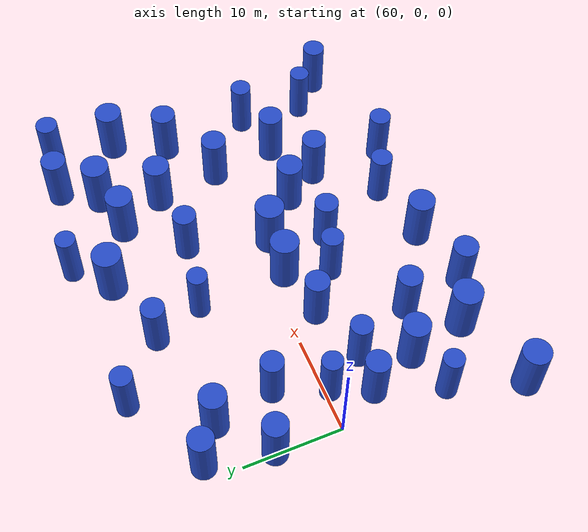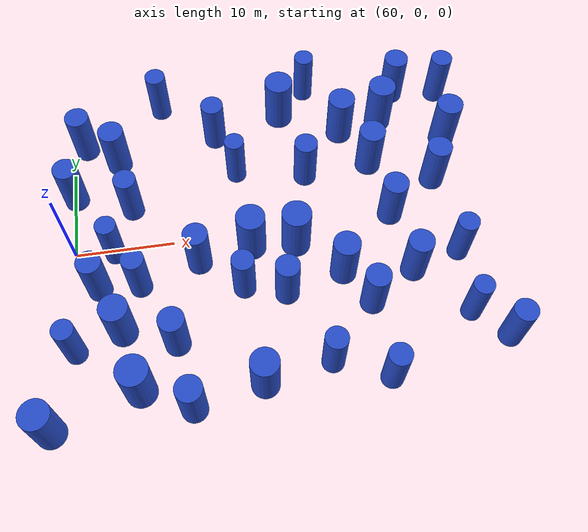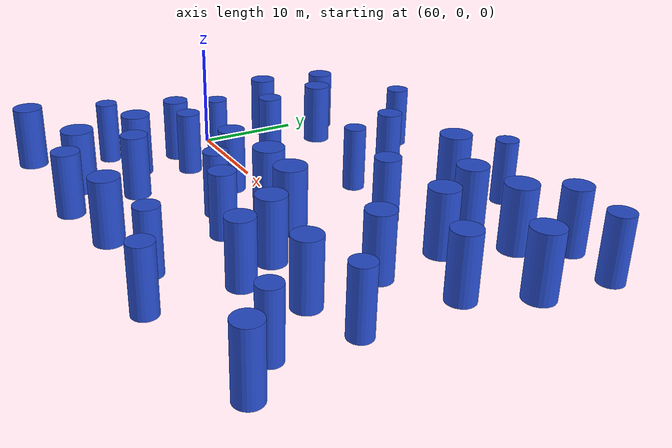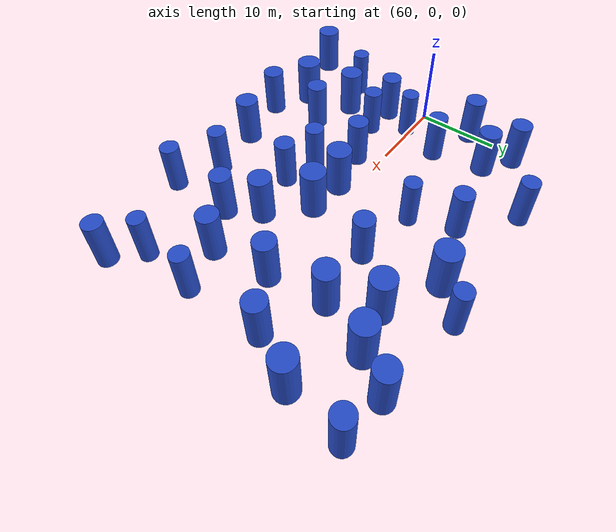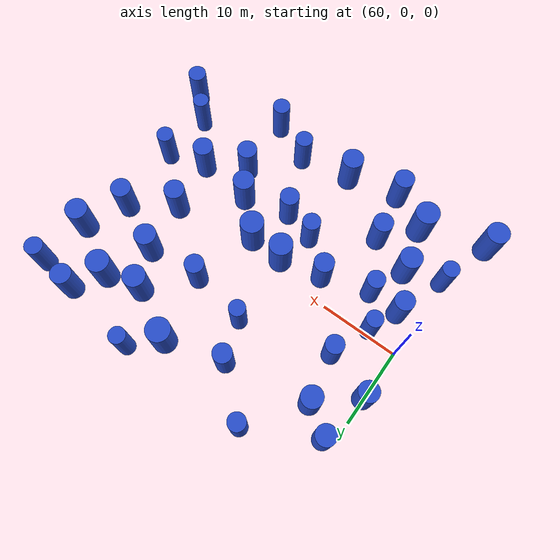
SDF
<sdf version="1.7">
 <world name="default">
  <model name="1">
   <static>1</static>
   <link name="link">
    <inertial>
     <mass>2</mass>
     <inertia><ixx>6.72296</ixx><ixy>0</ixy><ixz>0</ixz><iyy>6.72296</iyy><iyz>0</iyz><izz>1.44593</izz></inertia>
    </inertial>
    <collision name="collision">
     <geometry><cylinder><length>6</length><radius>1.20247</radius></cylinder></geometry>
     <surface><contact><collide_without_contact>1</collide_without_contact></contact></surface>
    </collision>
    <visual name="visual">
     <geometry><cylinder><length>6</length><radius>1.20247</radius></cylinder></geometry>
     <material>
      <script><uri>file://media/materials/scripts/gazebo.material</uri><name>Gazebo/Blue</name></script>
     </material>
    </visual>
    <gravity>0</gravity>
   </link>
   <pose>80.6973 -7.39447 3 0 -0 0</pose>
  </model>
  <model name="2">
   <static>1</static>
   <link name="link">
    <inertial>
     <mass>2</mass>
     <inertia><ixx>6.83423</ixx><ixy>0</ixy><ixz>0</ixz><iyy>6.83423</iyy><iyz>0</iyz><izz>1.66847</izz></inertia>
    </inertial>
    <collision name="collision">
     <geometry><cylinder><length>6</length><radius>1.29169</radius></cylinder></geometry>
     <surface><contact><collide_without_contact>1</collide_without_contact></contact></surface>
    </collision>
    <visual name="visual">
     <geometry><cylinder><length>6</length><radius>1.29169</radius></cylinder></geometry>
     <material>
      <script><uri>file://media/materials/scripts/gazebo.material</uri><name>Gazebo/Blue</name></script>
     </material>
    </visual>
    <gravity>0</gravity>
   </link>
   <pose>92.757 0.175366 3 0 -0 0</pose>
  </model>
  <model name="3">
   <static>1</static>
   <link name="link">
    <inertial>
     <mass>2</mass>
     <inertia><ixx>6.94931</ixx><ixy>0</ixy><ixz>0</ixz><iyy>6.94931</iyy><iyz>0</iyz><izz>1.89861</izz></inertia>
    </inertial>
    <collision name="collision">
     <geometry><cylinder><length>6</length><radius>1.3779</radius></cylinder></geometry>
     <surface><contact><collide_without_contact>1</collide_without_contact></contact></surface>
    </collision>
    <visual name="visual">
     <geometry><cylinder><length>6</length><radius>1.3779</radius></cylinder></geometry>
     <material>
      <script><uri>file://media/materials/scripts/gazebo.material</uri><name>Gazebo/Blue</name></script>
     </material>
    </visual>
    <gravity>0</gravity>
   </link>
   <pose>64.5107 -9.29219 3 0 -0 0</pose>
  </model>
  <model name="4">
   <static>1</static>
   <link name="link">
    <inertial>
     <mass>2</mass>
     <inertia><ixx>7.11213</ixx><ixy>0</ixy><ixz>0</ixz><iyy>7.11213</iyy><iyz>0</iyz><izz>2.22425</izz></inertia>
    </inertial>
    <collision name="collision">
     <geometry><cylinder><length>6</length><radius>1.49139</radius></cylinder></geometry>
     <surface><contact><collide_without_contact>1</collide_without_contact></contact></surface>
    </collision>
    <visual name="visual">
     <geometry><cylinder><length>6</length><radius>1.49139</radius></cylinder></geometry>
     <material>
      <script><uri>file://media/materials/scripts/gazebo.material</uri><name>Gazebo/Blue</name></script>
     </material>
    </visual>
    <gravity>0</gravity>
   </link>
   <pose>83.0964 14.8871 3 0 -0 0</pose>
  </model>
  <model name="5">
   <static>1</static>
   <link name="link">
    <inertial>
     <mass>2</mass>
     <inertia><ixx>6.9315</ixx><ixy>0</ixy><ixz>0</ixz><iyy>6.9315</iyy><iyz>0</iyz><izz>1.863</izz></inertia>
    </inertial>
    <collision name="collision">
     <geometry><cylinder><length>6</length><radius>1.36492</radius></cylinder></geometry>
     <surface><contact><collide_without_contact>1</collide_without_contact></contact></surface>
    </collision>
    <visual name="visual">
     <geometry><cylinder><length>6</length><radius>1.36492</radius></cylinder></geometry>
     <material>
      <script><uri>file://media/materials/scripts/gazebo.material</uri><name>Gazebo/Blue</name></script>
     </material>
    </visual>
    <gravity>0</gravity>
   </link>
   <pose>91.7951 6.85711 3 0 -0 0</pose>
  </model>
  <model name="8">
   <static>1</static>
   <link name="link">
    <inertial>
     <mass>2</mass>
     <inertia><ixx>6.98352</ixx><ixy>0</ixy><ixz>0</ixz><iyy>6.98352</iyy><iyz>0</iyz><izz>1.96705</izz></inertia>
    </inertial>
    <collision name="collision">
     <geometry><cylinder><length>6</length><radius>1.40251</radius></cylinder></geometry>
     <surface><contact><collide_without_contact>1</collide_without_contact></contact></surface>
    </collision>
    <visual name="visual">
     <geometry><cylinder><length>6</length><radius>1.40251</radius></cylinder></geometry>
     <material>
      <script><uri>file://media/materials/scripts/gazebo.material</uri><name>Gazebo/Blue</name></script>
     </material>
    </visual>
    <gravity>0</gravity>
   </link>
   <pose>57.7333 -18.0752 3 0 -0 0</pose>
  </model>
  <model name="9">
   <static>1</static>
   <link name="link">
    <inertial>
     <mass>2</mass>
     <inertia><ixx>6.71929</ixx><ixy>0</ixy><ixz>0</ixz><iyy>6.71929</iyy><iyz>0</iyz><izz>1.43859</izz></inertia>
    </inertial>
    <collision name="collision">
     <geometry><cylinder><length>6</length><radius>1.19941</radius></cylinder></geometry>
     <surface><contact><collide_without_contact>1</collide_without_contact></contact></surface>
    </collision>
    <visual name="visual">
     <geometry><cylinder><length>6</length><radius>1.19941</radius></cylinder></geometry>
     <material>
      <script><uri>file://media/materials/scripts/gazebo.material</uri><name>Gazebo/Blue</name></script>
     </material>
    </visual>
    <gravity>0</gravity>
   </link>
   <pose>84.7053 6.32276 3 0 -0 0</pose>
  </model>
  <model name="10">
   <static>1</static>
   <link name="link">
    <inertial>
     <mass>2</mass>
     <inertia><ixx>6.77724</ixx><ixy>0</ixy><ixz>0</ixz><iyy>6.77724</iyy><iyz>0</iyz><izz>1.55448</izz></inertia>
    </inertial>
    <collision name="collision">
     <geometry><cylinder><length>6</length><radius>1.24679</radius></cylinder></geometry>
     <surface><contact><collide_without_contact>1</collide_without_contact></contact></surface>
    </collision>
    <visual name="visual">
     <geometry><cylinder><length>6</length><radius>1.24679</radius></cylinder></geometry>
     <material>
      <script><uri>file://media/materials/scripts/gazebo.material</uri><name>Gazebo/Blue</name></script>
     </material>
    </visual>
    <gravity>0</gravity>
   </link>
   <pose>88.8436 -9.60499 3 0 -0 0</pose>
  </model>
  <model name="12">
   <static>1</static>
   <link name="link">
    <inertial>
     <mass>2</mass>
     <inertia><ixx>7.10079</ixx><ixy>0</ixy><ixz>0</ixz><iyy>7.10079</iyy><iyz>0</iyz><izz>2.20157</izz></inertia>
    </inertial>
    <collision name="collision">
     <geometry><cylinder><length>6</length><radius>1.48377</radius></cylinder></geometry>
     <surface><contact><collide_without_contact>1</collide_without_contact></contact></surface>
    </collision>
    <visual name="visual">
     <geometry><cylinder><length>6</length><radius>1.48377</radius></cylinder></geometry>
     <material>
      <script><uri>file://media/materials/scripts/gazebo.material</uri><name>Gazebo/Blue</name></script>
     </material>
    </visual>
    <gravity>0</gravity>
   </link>
   <pose>82.4183 -1.92681 3 0 -0 0</pose>
  </model>
  <model name="14">
   <static>1</static>
   <link name="link">
    <inertial>
     <mass>2</mass>
     <inertia><ixx>6.81118</ixx><ixy>0</ixy><ixz>0</ixz><iyy>6.81118</iyy><iyz>0</iyz><izz>1.62236</izz></inertia>
    </inertial>
    <collision name="collision">
     <geometry><cylinder><length>6</length><radius>1.27372</radius></cylinder></geometry>
     <surface><contact><collide_without_contact>1</collide_without_contact></contact></surface>
    </collision>
    <visual name="visual">
     <geometry><cylinder><length>6</length><radius>1.27372</radius></cylinder></geometry>
     <material>
      <script><uri>file://media/materials/scripts/gazebo.material</uri><name>Gazebo/Blue</name></script>
     </material>
    </visual>
    <gravity>0</gravity>
   </link>
   <pose>98.2023 3.86457 3 0 -0 0</pose>
  </model>
  <model name="15">
   <static>1</static>
   <link name="link">
    <inertial>
     <mass>2</mass>
     <inertia><ixx>6.74725</ixx><ixy>0</ixy><ixz>0</ixz><iyy>6.74725</iyy><iyz>0</iyz><izz>1.49449</izz></inertia>
    </inertial>
    <collision name="collision">
     <geometry><cylinder><length>6</length><radius>1.22249</radius></cylinder></geometry>
     <surface><contact><collide_without_contact>1</collide_without_contact></contact></surface>
    </collision>
    <visual name="visual">
     <geometry><cylinder><length>6</length><radius>1.22249</radius></cylinder></geometry>
     <material>
      <script><uri>file://media/materials/scripts/gazebo.material</uri><name>Gazebo/Blue</name></script>
     </material>
    </visual>
    <gravity>0</gravity>
   </link>
   <pose>62.3933 -4.32254 3 0 -0 0</pose>
  </model>
  <model name="18">
   <static>1</static>
   <link name="link">
    <inertial>
     <mass>2</mass>
     <inertia><ixx>7.03448</ixx><ixy>0</ixy><ixz>0</ixz><iyy>7.03448</iyy><iyz>0</iyz><izz>2.06895</izz></inertia>
    </inertial>
    <collision name="collision">
     <geometry><cylinder><length>6</length><radius>1.43839</radius></cylinder></geometry>
     <surface><contact><collide_without_contact>1</collide_without_contact></contact></surface>
    </collision>
    <visual name="visual">
     <geometry><cylinder><length>6</length><radius>1.43839</radius></cylinder></geometry>
     <material>
      <script><uri>file://media/materials/scripts/gazebo.material</uri><name>Gazebo/Blue</name></script>
     </material>
    </visual>
    <gravity>0</gravity>
   </link>
   <pose>94.1201 12.7132 3 0 -0 0</pose>
  </model>
  <model name="20">
   <static>1</static>
   <link name="link">
    <inertial>
     <mass>2</mass>
     <inertia><ixx>6.64731</ixx><ixy>0</ixy><ixz>0</ixz><iyy>6.64731</iyy><iyz>0</iyz><izz>1.29463</izz></inertia>
    </inertial>
    <collision name="collision">
     <geometry><cylinder><length>6</length><radius>1.13782</radius></cylinder></geometry>
     <surface><contact><collide_without_contact>1</collide_without_contact></contact></surface>
    </collision>
    <visual name="visual">
     <geometry><cylinder><length>6</length><radius>1.13782</radius></cylinder></geometry>
     <material>
      <script><uri>file://media/materials/scripts/gazebo.material</uri><name>Gazebo/Blue</name></script>
     </material>
    </visual>
    <gravity>0</gravity>
   </link>
   <pose>101.496 15.7288 3 0 -0 0</pose>
  </model>
  <model name="21">
   <static>1</static>
   <link name="link">
    <inertial>
     <mass>2</mass>
     <inertia><ixx>6.54203</ixx><ixy>0</ixy><ixz>0</ixz><iyy>6.54203</iyy><iyz>0</iyz><izz>1.08407</izz></inertia>
    </inertial>
    <collision name="collision">
     <geometry><cylinder><length>6</length><radius>1.04119</radius></cylinder></geometry>
     <surface><contact><collide_without_contact>1</collide_without_contact></contact></surface>
    </collision>
    <visual name="visual">
     <geometry><cylinder><length>6</length><radius>1.04119</radius></cylinder></geometry>
     <material>
      <script><uri>file://media/materials/scripts/gazebo.material</uri><name>Gazebo/Blue</name></script>
     </material>
    </visual>
    <gravity>0</gravity>
   </link>
   <pose>64.0435 -0.514004 3 0 -0 0</pose>
  </model>
  <model name="23">
   <static>1</static>
   <link name="link">
    <inertial>
     <mass>2</mass>
     <inertia><ixx>6.61631</ixx><ixy>0</ixy><ixz>0</ixz><iyy>6.61631</iyy><iyz>0</iyz><izz>1.23261</izz></inertia>
    </inertial>
    <collision name="collision">
     <geometry><cylinder><length>6</length><radius>1.11023</radius></cylinder></geometry>
     <surface><contact><collide_without_contact>1</collide_without_contact></contact></surface>
    </collision>
    <visual name="visual">
     <geometry><cylinder><length>6</length><radius>1.11023</radius></cylinder></geometry>
     <material>
      <script><uri>file://media/materials/scripts/gazebo.material</uri><name>Gazebo/Blue</name></script>
     </material>
    </visual>
    <gravity>0</gravity>
   </link>
   <pose>83.8898 -15.0889 3 0 -0 0</pose>
  </model>
  <model name="25">
   <static>1</static>
   <link name="link">
    <inertial>
     <mass>2</mass>
     <inertia><ixx>6.80277</ixx><ixy>0</ixy><ixz>0</ixz><iyy>6.80277</iyy><iyz>0</iyz><izz>1.60554</izz></inertia>
    </inertial>
    <collision name="collision">
     <geometry><cylinder><length>6</length><radius>1.2671</radius></cylinder></geometry>
     <surface><contact><collide_without_contact>1</collide_without_contact></contact></surface>
    </collision>
    <visual name="visual">
     <geometry><cylinder><length>6</length><radius>1.2671</radius></cylinder></geometry>
     <material>
      <script><uri>file://media/materials/scripts/gazebo.material</uri><name>Gazebo/Blue</name></script>
     </material>
    </visual>
    <gravity>0</gravity>
   </link>
   <pose>70.6013 -17.7327 3 0 -0 0</pose>
  </model>
  <model name="27">
   <static>1</static>
   <link name="link">
    <inertial>
     <mass>2</mass>
     <inertia><ixx>6.51088</ixx><ixy>0</ixy><ixz>0</ixz><iyy>6.51088</iyy><iyz>0</iyz><izz>1.02175</izz></inertia>
    </inertial>
    <collision name="collision">
     <geometry><cylinder><length>6</length><radius>1.01082</radius></cylinder></geometry>
     <surface><contact><collide_without_contact>1</collide_without_contact></contact></surface>
    </collision>
    <visual name="visual">
     <geometry><cylinder><length>6</length><radius>1.01082</radius></cylinder></geometry>
     <material>
      <script><uri>file://media/materials/scripts/gazebo.material</uri><name>Gazebo/Blue</name></script>
     </material>
    </visual>
    <gravity>0</gravity>
   </link>
   <pose>98.1711 -11.9642 3 0 -0 0</pose>
  </model>
  <model name="31">
   <static>1</static>
   <link name="link">
    <inertial>
     <mass>2</mass>
     <inertia><ixx>6.69535</ixx><ixy>0</ixy><ixz>0</ixz><iyy>6.69535</iyy><iyz>0</iyz><izz>1.3907</izz></inertia>
    </inertial>
    <collision name="collision">
     <geometry><cylinder><length>6</length><radius>1.17928</radius></cylinder></geometry>
     <surface><contact><collide_without_contact>1</collide_without_contact></contact></surface>
    </collision>
    <visual name="visual">
     <geometry><cylinder><length>6</length><radius>1.17928</radius></cylinder></geometry>
     <material>
      <script><uri>file://media/materials/scripts/gazebo.material</uri><name>Gazebo/Blue</name></script>
     </material>
    </visual>
    <gravity>0</gravity>
   </link>
   <pose>75.6136 12.7351 3 0 -0 0</pose>
  </model>
  <model name="32">
   <static>1</static>
   <link name="link">
    <inertial>
     <mass>2</mass>
     <inertia><ixx>6.5883</ixx><ixy>0</ixy><ixz>0</ixz><iyy>6.5883</iyy><iyz>0</iyz><izz>1.1766</izz></inertia>
    </inertial>
    <collision name="collision">
     <geometry><cylinder><length>6</length><radius>1.08471</radius></cylinder></geometry>
     <surface><contact><collide_without_contact>1</collide_without_contact></contact></surface>
    </collision>
    <visual name="visual">
     <geometry><cylinder><length>6</length><radius>1.08471</radius></cylinder></geometry>
     <material>
      <script><uri>file://media/materials/scripts/gazebo.material</uri><name>Gazebo/Blue</name></script>
     </material>
    </visual>
    <gravity>0</gravity>
   </link>
   <pose>69.8895 17.6498 3 0 -0 0</pose>
  </model>
  <model name="33">
   <static>1</static>
   <link name="link">
    <inertial>
     <mass>2</mass>
     <inertia><ixx>6.89526</ixx><ixy>0</ixy><ixz>0</ixz><iyy>6.89526</iyy><iyz>0</iyz><izz>1.79051</izz></inertia>
    </inertial>
    <collision name="collision">
     <geometry><cylinder><length>6</length><radius>1.3381</radius></cylinder></geometry>
     <surface><contact><collide_without_contact>1</collide_without_contact></contact></surface>
    </collision>
    <visual name="visual">
     <geometry><cylinder><length>6</length><radius>1.3381</radius></cylinder></geometry>
     <material>
      <script><uri>file://media/materials/scripts/gazebo.material</uri><name>Gazebo/Blue</name></script>
     </material>
    </visual>
    <gravity>0</gravity>
   </link>
   <pose>86.618 -5.88549 3 0 -0 0</pose>
  </model>
  <model name="36">
   <static>1</static>
   <link name="link">
    <inertial>
     <mass>2</mass>
     <inertia><ixx>6.63334</ixx><ixy>0</ixy><ixz>0</ixz><iyy>6.63334</iyy><iyz>0</iyz><izz>1.26667</izz></inertia>
    </inertial>
    <collision name="collision">
     <geometry><cylinder><length>6</length><radius>1.12547</radius></cylinder></geometry>
     <surface><contact><collide_without_contact>1</collide_without_contact></contact></surface>
    </collision>
    <visual name="visual">
     <geometry><cylinder><length>6</length><radius>1.12547</radius></cylinder></geometry>
     <material>
      <script><uri>file://media/materials/scripts/gazebo.material</uri><name>Gazebo/Blue</name></script>
     </material>
    </visual>
    <gravity>0</gravity>
   </link>
   <pose>76.6137 -6.194 3 0 -0 0</pose>
  </model>
  <model name="38">
   <static>1</static>
   <link name="link">
    <inertial>
     <mass>2</mass>
     <inertia><ixx>6.6543</ixx><ixy>0</ixy><ixz>0</ixz><iyy>6.6543</iyy><iyz>0</iyz><izz>1.3086</izz></inertia>
    </inertial>
    <collision name="collision">
     <geometry><cylinder><length>6</length><radius>1.14394</radius></cylinder></geometry>
     <surface><contact><collide_without_contact>1</collide_without_contact></contact></surface>
    </collision>
    <visual name="visual">
     <geometry><cylinder><length>6</length><radius>1.14394</radius></cylinder></geometry>
     <material>
      <script><uri>file://media/materials/scripts/gazebo.material</uri><name>Gazebo/Blue</name></script>
     </material>
    </visual>
    <gravity>0</gravity>
   </link>
   <pose>66.0688 4.56607 3 0 -0 0</pose>
  </model>
  <model name="40">
   <static>1</static>
   <link name="link">
    <inertial>
     <mass>2</mass>
     <inertia><ixx>6.62687</ixx><ixy>0</ixy><ixz>0</ixz><iyy>6.62687</iyy><iyz>0</iyz><izz>1.25375</izz></inertia>
    </inertial>
    <collision name="collision">
     <geometry><cylinder><length>6</length><radius>1.11971</radius></cylinder></geometry>
     <surface><contact><collide_without_contact>1</collide_without_contact></contact></surface>
    </collision>
    <visual name="visual">
     <geometry><cylinder><length>6</length><radius>1.11971</radius></cylinder></geometry>
     <material>
      <script><uri>file://media/materials/scripts/gazebo.material</uri><name>Gazebo/Blue</name></script>
     </material>
    </visual>
    <gravity>0</gravity>
   </link>
   <pose>66.4322 -4.58232 3 0 -0 0</pose>
  </model>
  <model name="44">
   <static>1</static>
   <link name="link">
    <inertial>
     <mass>2</mass>
     <inertia><ixx>6.98634</ixx><ixy>0</ixy><ixz>0</ixz><iyy>6.98634</iyy><iyz>0</iyz><izz>1.97268</izz></inertia>
    </inertial>
    <collision name="collision">
     <geometry><cylinder><length>6</length><radius>1.40452</radius></cylinder></geometry>
     <surface><contact><collide_without_contact>1</collide_without_contact></contact></surface>
    </collision>
    <visual name="visual">
     <geometry><cylinder><length>6</length><radius>1.40452</radius></cylinder></geometry>
     <material>
      <script><uri>file://media/materials/scripts/gazebo.material</uri><name>Gazebo/Blue</name></script>
     </material>
    </visual>
    <gravity>0</gravity>
   </link>
   <pose>89.4482 11.619 3 0 -0 0</pose>
  </model>
  <model name="45">
   <static>1</static>
   <link name="link">
    <inertial>
     <mass>2</mass>
     <inertia><ixx>7.12457</ixx><ixy>0</ixy><ixz>0</ixz><iyy>7.12457</iyy><iyz>0</iyz><izz>2.24913</izz></inertia>
    </inertial>
    <collision name="collision">
     <geometry><cylinder><length>6</length><radius>1.49971</radius></cylinder></geometry>
     <surface><contact><collide_without_contact>1</collide_without_contact></contact></surface>
    </collision>
    <visual name="visual">
     <geometry><cylinder><length>6</length><radius>1.49971</radius></cylinder></geometry>
     <material>
      <script><uri>file://media/materials/scripts/gazebo.material</uri><name>Gazebo/Blue</name></script>
     </material>
    </visual>
    <gravity>0</gravity>
   </link>
   <pose>65.9097 -15.412 3 0 -0 0</pose>
  </model>
  <model name="50">
   <static>1</static>
   <link name="link">
    <inertial>
     <mass>2</mass>
     <inertia><ixx>6.81815</ixx><ixy>0</ixy><ixz>0</ixz><iyy>6.81815</iyy><iyz>0</iyz><izz>1.6363</izz></inertia>
    </inertial>
    <collision name="collision">
     <geometry><cylinder><length>6</length><radius>1.27918</radius></cylinder></geometry>
     <surface><contact><collide_without_contact>1</collide_without_contact></contact></surface>
    </collision>
    <visual name="visual">
     <geometry><cylinder><length>6</length><radius>1.27918</radius></cylinder></geometry>
     <material>
      <script><uri>file://media/materials/scripts/gazebo.material</uri><name>Gazebo/Blue</name></script>
     </material>
    </visual>
    <gravity>0</gravity>
   </link>
   <pose>96.5079 16.4159 3 0 -0 0</pose>
  </model>
  <model name="51">
   <static>1</static>
   <link name="link">
    <inertial>
     <mass>2</mass>
     <inertia><ixx>6.52122</ixx><ixy>0</ixy><ixz>0</ixz><iyy>6.52122</iyy><iyz>0</iyz><izz>1.04245</izz></inertia>
    </inertial>
    <collision name="collision">
     <geometry><cylinder><length>6</length><radius>1.021</radius></cylinder></geometry>
     <surface><contact><collide_without_contact>1</collide_without_contact></contact></surface>
    </collision>
    <visual name="visual">
     <geometry><cylinder><length>6</length><radius>1.021</radius></cylinder></geometry>
     <material>
      <script><uri>file://media/materials/scripts/gazebo.material</uri><name>Gazebo/Blue</name></script>
     </material>
    </visual>
    <gravity>0</gravity>
   </link>
   <pose>77.4047 7.64189 3 0 -0 0</pose>
  </model>
  <model name="56">
   <static>1</static>
   <link name="link">
    <inertial>
     <mass>2</mass>
     <inertia><ixx>6.53606</ixx><ixy>0</ixy><ixz>0</ixz><iyy>6.53606</iyy><iyz>0</iyz><izz>1.07212</izz></inertia>
    </inertial>
    <collision name="collision">
     <geometry><cylinder><length>6</length><radius>1.03543</radius></cylinder></geometry>
     <surface><contact><collide_without_contact>1</collide_without_contact></contact></surface>
    </collision>
    <visual name="visual">
     <geometry><cylinder><length>6</length><radius>1.03543</radius></cylinder></geometry>
     <material>
      <script><uri>file://media/materials/scripts/gazebo.material</uri><name>Gazebo/Blue</name></script>
     </material>
    </visual>
    <gravity>0</gravity>
   </link>
   <pose>86.379 18.063 3 0 -0 0</pose>
  </model>
  <model name="57">
   <static>1</static>
   <link name="link">
    <inertial>
     <mass>2</mass>
     <inertia><ixx>6.76823</ixx><ixy>0</ixy><ixz>0</ixz><iyy>6.76823</iyy><iyz>0</iyz><izz>1.53647</izz></inertia>
    </inertial>
    <collision name="collision">
     <geometry><cylinder><length>6</length><radius>1.23954</radius></cylinder></geometry>
     <surface><contact><collide_without_contact>1</collide_without_contact></contact></surface>
    </collision>
    <visual name="visual">
     <geometry><cylinder><length>6</length><radius>1.23954</radius></cylinder></geometry>
     <material>
      <script><uri>file://media/materials/scripts/gazebo.material</uri><name>Gazebo/Blue</name></script>
     </material>
    </visual>
    <gravity>0</gravity>
   </link>
   <pose>72.4647 -2.75646 3 0 -0 0</pose>
  </model>
  <model name="58">
   <static>1</static>
   <link name="link">
    <inertial>
     <mass>2</mass>
     <inertia><ixx>6.93486</ixx><ixy>0</ixy><ixz>0</ixz><iyy>6.93486</iyy><iyz>0</iyz><izz>1.86972</izz></inertia>
    </inertial>
    <collision name="collision">
     <geometry><cylinder><length>6</length><radius>1.36738</radius></cylinder></geometry>
     <surface><contact><collide_without_contact>1</collide_without_contact></contact></surface>
    </collision>
    <visual name="visual">
     <geometry><cylinder><length>6</length><radius>1.36738</radius></cylinder></geometry>
     <material>
      <script><uri>file://media/materials/scripts/gazebo.material</uri><name>Gazebo/Blue</name></script>
     </material>
    </visual>
    <gravity>0</gravity>
   </link>
   <pose>77.3036 -16.3536 3 0 -0 0</pose>
  </model>
  <model name="62">
   <static>1</static>
   <link name="link">
    <inertial>
     <mass>2</mass>
     <inertia><ixx>6.81051</ixx><ixy>0</ixy><ixz>0</ixz><iyy>6.81051</iyy><iyz>0</iyz><izz>1.62103</izz></inertia>
    </inertial>
    <collision name="collision">
     <geometry><cylinder><length>6</length><radius>1.2732</radius></cylinder></geometry>
     <surface><contact><collide_without_contact>1</collide_without_contact></contact></surface>
    </collision>
    <visual name="visual">
     <geometry><cylinder><length>6</length><radius>1.2732</radius></cylinder></geometry>
     <material>
      <script><uri>file://media/materials/scripts/gazebo.material</uri><name>Gazebo/Blue</name></script>
     </material>
    </visual>
    <gravity>0</gravity>
   </link>
   <pose>93.6427 -6.6495 3 0 -0 0</pose>
  </model>
  <model name="63">
   <static>1</static>
   <link name="link">
    <inertial>
     <mass>2</mass>
     <inertia><ixx>6.7804</ixx><ixy>0</ixy><ixz>0</ixz><iyy>6.7804</iyy><iyz>0</iyz><izz>1.56081</izz></inertia>
    </inertial>
    <collision name="collision">
     <geometry><cylinder><length>6</length><radius>1.24932</radius></cylinder></geometry>
     <surface><contact><collide_without_contact>1</collide_without_contact></contact></surface>
    </collision>
    <visual name="visual">
     <geometry><cylinder><length>6</length><radius>1.24932</radius></cylinder></geometry>
     <material>
      <script><uri>file://media/materials/scripts/gazebo.material</uri><name>Gazebo/Blue</name></script>
     </material>
    </visual>
    <gravity>0</gravity>
   </link>
   <pose>69.5819 -11.1757 3 0 -0 0</pose>
  </model>
  <model name="64">
   <static>1</static>
   <link name="link">
    <inertial>
     <mass>2</mass>
     <inertia><ixx>6.61537</ixx><ixy>0</ixy><ixz>0</ixz><iyy>6.61537</iyy><iyz>0</iyz><izz>1.23074</izz></inertia>
    </inertial>
    <collision name="collision">
     <geometry><cylinder><length>6</length><radius>1.10939</radius></cylinder></geometry>
     <surface><contact><collide_without_contact>1</collide_without_contact></contact></surface>
    </collision>
    <visual name="visual">
     <geometry><cylinder><length>6</length><radius>1.10939</radius></cylinder></geometry>
     <material>
      <script><uri>file://media/materials/scripts/gazebo.material</uri><name>Gazebo/Blue</name></script>
     </material>
    </visual>
    <gravity>0</gravity>
   </link>
   <pose>89.071 -17.4014 3 0 -0 0</pose>
  </model>
  <model name="67">
   <static>1</static>
   <link name="link">
    <inertial>
     <mass>2</mass>
     <inertia><ixx>6.78438</ixx><ixy>0</ixy><ixz>0</ixz><iyy>6.78438</iyy><iyz>0</iyz><izz>1.56876</izz></inertia>
    </inertial>
    <collision name="collision">
     <geometry><cylinder><length>6</length><radius>1.2525</radius></cylinder></geometry>
     <surface><contact><collide_without_contact>1</collide_without_contact></contact></surface>
    </collision>
    <visual name="visual">
     <geometry><cylinder><length>6</length><radius>1.2525</radius></cylinder></geometry>
     <material>
      <script><uri>file://media/materials/scripts/gazebo.material</uri><name>Gazebo/Blue</name></script>
     </material>
    </visual>
    <gravity>0</gravity>
   </link>
   <pose>60.2022 6.69553 3 0 -0 0</pose>
  </model>
  <model name="68">
   <static>1</static>
   <link name="link">
    <inertial>
     <mass>2</mass>
     <inertia><ixx>6.95071</ixx><ixy>0</ixy><ixz>0</ixz><iyy>6.95071</iyy><iyz>0</iyz><izz>1.90143</izz></inertia>
    </inertial>
    <collision name="collision">
     <geometry><cylinder><length>6</length><radius>1.37892</radius></cylinder></geometry>
     <surface><contact><collide_without_contact>1</collide_without_contact></contact></surface>
    </collision>
    <visual name="visual">
     <geometry><cylinder><length>6</length><radius>1.37892</radius></cylinder></geometry>
     <material>
      <script><uri>file://media/materials/scripts/gazebo.material</uri><name>Gazebo/Blue</name></script>
     </material>
    </visual>
    <gravity>0</gravity>
   </link>
   <pose>100.7 9.19752 3 0 -0 0</pose>
  </model>
  <model name="70">
   <static>1</static>
   <link name="link">
    <inertial>
     <mass>2</mass>
     <inertia><ixx>6.77017</ixx><ixy>0</ixy><ixz>0</ixz><iyy>6.77017</iyy><iyz>0</iyz><izz>1.54035</izz></inertia>
    </inertial>
    <collision name="collision">
     <geometry><cylinder><length>6</length><radius>1.24111</radius></cylinder></geometry>
     <surface><contact><collide_without_contact>1</collide_without_contact></contact></surface>
    </collision>
    <visual name="visual">
     <geometry><cylinder><length>6</length><radius>1.24111</radius></cylinder></geometry>
     <material>
      <script><uri>file://media/materials/scripts/gazebo.material</uri><name>Gazebo/Blue</name></script>
     </material>
    </visual>
    <gravity>0</gravity>
   </link>
   <pose>61.4244 13.1806 3 0 -0 0</pose>
  </model>
  <model name="72">
   <static>1</static>
   <link name="link">
    <inertial>
     <mass>2</mass>
     <inertia><ixx>6.87185</ixx><ixy>0</ixy><ixz>0</ixz><iyy>6.87185</iyy><iyz>0</iyz><izz>1.7437</izz></inertia>
    </inertial>
    <collision name="collision">
     <geometry><cylinder><length>6</length><radius>1.32049</radius></cylinder></geometry>
     <surface><contact><collide_without_contact>1</collide_without_contact></contact></surface>
    </collision>
    <visual name="visual">
     <geometry><cylinder><length>6</length><radius>1.32049</radius></cylinder></geometry>
     <material>
      <script><uri>file://media/materials/scripts/gazebo.material</uri><name>Gazebo/Blue</name></script>
     </material>
    </visual>
    <gravity>0</gravity>
   </link>
   <pose>64.8814 10.7806 3 0 -0 0</pose>
  </model>
  <model name="73">
   <static>1</static>
   <link name="link">
    <inertial>
     <mass>2</mass>
     <inertia><ixx>7.05981</ixx><ixy>0</ixy><ixz>0</ixz><iyy>7.05981</iyy><iyz>0</iyz><izz>2.11962</izz></inertia>
    </inertial>
    <collision name="collision">
     <geometry><cylinder><length>6</length><radius>1.45589</radius></cylinder></geometry>
     <surface><contact><collide_without_contact>1</collide_without_contact></contact></surface>
    </collision>
    <visual name="visual">
     <geometry><cylinder><length>6</length><radius>1.45589</radius></cylinder></geometry>
     <material>
      <script><uri>file://media/materials/scripts/gazebo.material</uri><name>Gazebo/Blue</name></script>
     </material>
    </visual>
    <gravity>0</gravity>
   </link>
   <pose>77.9144 -1.65153 3 0 -0 0</pose>
  </model>
  <model name="74">
   <static>1</static>
   <link name="link">
    <inertial>
     <mass>2</mass>
     <inertia><ixx>6.53838</ixx><ixy>0</ixy><ixz>0</ixz><iyy>6.53838</iyy><iyz>0</iyz><izz>1.07676</izz></inertia>
    </inertial>
    <collision name="collision">
     <geometry><cylinder><length>6</length><radius>1.03767</radius></cylinder></geometry>
     <surface><contact><collide_without_contact>1</collide_without_contact></contact></surface>
    </collision>
    <visual name="visual">
     <geometry><cylinder><length>6</length><radius>1.03767</radius></cylinder></geometry>
     <material>
      <script><uri>file://media/materials/scripts/gazebo.material</uri><name>Gazebo/Blue</name></script>
     </material>
    </visual>
    <gravity>0</gravity>
   </link>
   <pose>60.0307 -10.7714 3 0 -0 0</pose>
  </model>
  <model name="79">
   <static>1</static>
   <link name="link">
    <inertial>
     <mass>2</mass>
     <inertia><ixx>6.56349</ixx><ixy>0</ixy><ixz>0</ixz><iyy>6.56349</iyy><iyz>0</iyz><izz>1.12698</izz></inertia>
    </inertial>
    <collision name="collision">
     <geometry><cylinder><length>6</length><radius>1.06159</radius></cylinder></geometry>
     <surface><contact><collide_without_contact>1</collide_without_contact></contact></surface>
    </collision>
    <visual name="visual">
     <geometry><cylinder><length>6</length><radius>1.06159</radius></cylinder></geometry>
     <material>
      <script><uri>file://media/materials/scripts/gazebo.material</uri><name>Gazebo/Blue</name></script>
     </material>
    </visual>
    <gravity>0</gravity>
   </link>
   <pose>98.6614 -5.21791 3 0 -0 0</pose>
  </model>
  <model name="80">
   <static>1</static>
   <link name="link">
    <inertial>
     <mass>2</mass>
     <inertia><ixx>6.65702</ixx><ixy>0</ixy><ixz>0</ixz><iyy>6.65702</iyy><iyz>0</iyz><izz>1.31404</izz></inertia>
    </inertial>
    <collision name="collision">
     <geometry><cylinder><length>6</length><radius>1.14632</radius></cylinder></geometry>
     <surface><contact><collide_without_contact>1</collide_without_contact></contact></surface>
    </collision>
    <visual name="visual">
     <geometry><cylinder><length>6</length><radius>1.14632</radius></cylinder></geometry>
     <material>
      <script><uri>file://media/materials/scripts/gazebo.material</uri><name>Gazebo/Blue</name></script>
     </material>
    </visual>
    <gravity>0</gravity>
   </link>
   <pose>101.165 -14.9856 3 0 -0 0</pose>
  </model>
 </world>
</sdf>
